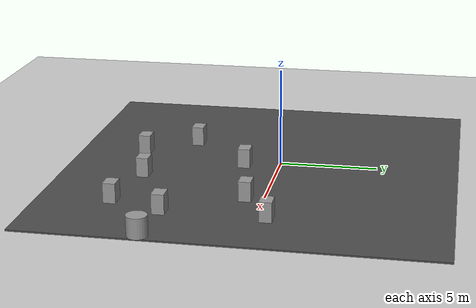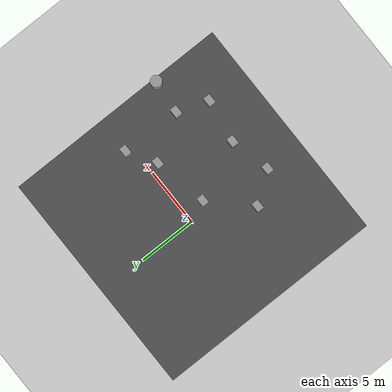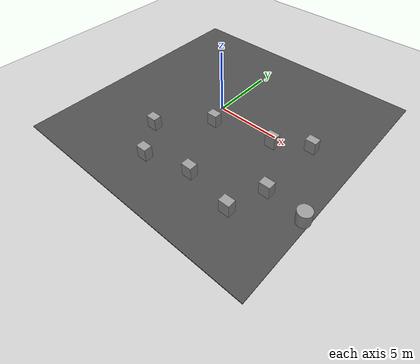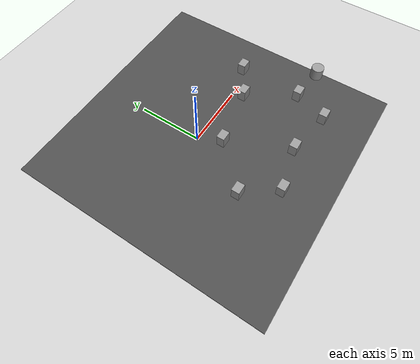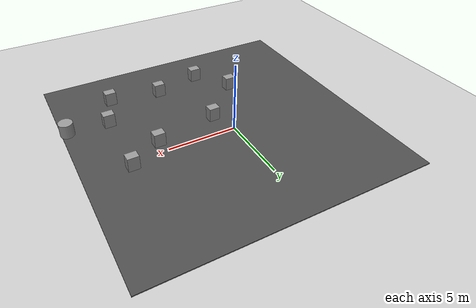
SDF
<sdf version="1.7">
 <world name="default">
  <light name="sun" type="directional">
   <pose>0 0 10 0 -0 0</pose>
   <diffuse>0.8 0.8 0.8 1</diffuse>
   <specular>0.2 0.2 0.2 1</specular>
   <attenuation>
    <range>1000</range>
    <constant>0.9</constant>
    <linear>0.01</linear>
    <quadratic>0.001</quadratic>
   </attenuation>
   <direction>-0.5 0.1 -0.9</direction>
   <spot><inner_angle>0</inner_angle><outer_angle>0</outer_angle><falloff>0</falloff></spot>
  </light>
  <model name="ground_plane">
   <static>1</static>
   <link name="link">
    <collision name="collision">
     <geometry><plane><normal>0 0 1</normal><size>100 100</size></plane></geometry>
     <surface>
      <contact><collide_bitmask>65535</collide_bitmask></contact>
      <friction><ode><mu>100</mu><mu2>50</mu2></ode></friction>
     </surface>
    </collision>
    <visual name="visual">
     <cast_shadows>0</cast_shadows>
     <geometry><plane><normal>0 0 1</normal><size>100 100</size></plane></geometry>
     <material>
      <script><uri>file://media/materials/scripts/gazebo.material</uri><name>Gazebo/Grey</name></script>
     </material>
    </visual>
   </link>
  </model>
  <gravity>0 0 -9.8</gravity>
  <magnetic_field>6e-06 2.3e-05 -4.2e-05</magnetic_field>
  <atmosphere type="adiabatic"/>
  <physics type="ode">
   <max_step_size>0.001</max_step_size>
   <real_time_factor>1</real_time_factor>
   <real_time_update_rate>1000</real_time_update_rate>
  </physics>
  <scene><ambient>0.4 0.4 0.4 1</ambient><background>0.7 0.7 0.7 1</background><shadows>1</shadows></scene>
  <spherical_coordinates>
   <surface_model>EARTH_WGS84</surface_model>
   <latitude_deg>0</latitude_deg>
   <longitude_deg>0</longitude_deg>
   <elevation>0</elevation>
   <heading_deg>0</heading_deg>
  </spherical_coordinates>
  <light name="user_directional_light_0" type="directional">
   <pose>12.5924 29.0347 1 0 -0 0</pose>
   <diffuse>0.5 0.5 0.5 1</diffuse>
   <specular>0.1 0.1 0.1 1</specular>
   <direction>0.1 0.1 -0.9</direction>
   <attenuation>
    <range>20</range>
    <constant>0.5</constant>
    <linear>0.01</linear>
    <quadratic>0.001</quadratic>
   </attenuation>
   <spot><inner_angle>0</inner_angle><outer_angle>0</outer_angle><falloff>0</falloff></spot>
  </light>
  <light name="user_directional_light_1" type="directional">
   <pose>11.9865 -27.8356 1 0 -0 0</pose>
   <diffuse>0.5 0.5 0.5 1</diffuse>
   <specular>0.1 0.1 0.1 1</specular>
   <direction>0.1 0.1 -0.9</direction>
   <attenuation>
    <range>20</range>
    <constant>0.5</constant>
    <linear>0.01</linear>
    <quadratic>0.001</quadratic>
   </attenuation>
   <spot><inner_angle>0</inner_angle><outer_angle>0</outer_angle><falloff>0</falloff></spot>
  </light>
  <light name="user_directional_light_2" type="directional">
   <pose>-11.73 29.4383 1 0 -0 0</pose>
   <diffuse>0.5 0.5 0.5 1</diffuse>
   <specular>0.1 0.1 0.1 1</specular>
   <direction>0.1 0.1 -0.9</direction>
   <attenuation>
    <range>20</range>
    <constant>0.5</constant>
    <linear>0.01</linear>
    <quadratic>0.001</quadratic>
   </attenuation>
   <spot><inner_angle>0</inner_angle><outer_angle>0</outer_angle><falloff>0</falloff></spot>
  </light>
  <light name="user_directional_light_3" type="directional">
   <pose>-12.4873 -27.4824 1 0 -0 0</pose>
   <diffuse>0.5 0.5 0.5 1</diffuse>
   <specular>0.1 0.1 0.1 1</specular>
   <direction>0.1 0.1 -0.9</direction>
   <attenuation>
    <range>20</range>
    <constant>0.5</constant>
    <linear>0.01</linear>
    <quadratic>0.001</quadratic>
   </attenuation>
   <spot><inner_angle>0</inner_angle><outer_angle>0</outer_angle><falloff>0</falloff></spot>
  </light>
  <light name="user_directional_light_4" type="directional">
   <pose>15.1656 0.977923 1 0 -0 0</pose>
   <diffuse>0.5 0.5 0.5 1</diffuse>
   <specular>0.1 0.1 0.1 1</specular>
   <direction>0.1 0.1 -0.9</direction>
   <attenuation>
    <range>20</range>
    <constant>0.5</constant>
    <linear>0.01</linear>
    <quadratic>0.001</quadratic>
   </attenuation>
   <spot><inner_angle>0</inner_angle><outer_angle>0</outer_angle><falloff>0</falloff></spot>
  </light>
  <light name="user_directional_light_5" type="directional">
   <pose>-16.5241 -1.24234 1 0 -0 0</pose>
   <diffuse>0.5 0.5 0.5 1</diffuse>
   <specular>0.1 0.1 0.1 1</specular>
   <direction>0.1 0.1 -0.9</direction>
   <attenuation>
    <range>20</range>
    <constant>0.5</constant>
    <linear>0.01</linear>
    <quadratic>0.001</quadratic>
   </attenuation>
   <spot><inner_angle>0</inner_angle><outer_angle>0</outer_angle><falloff>0</falloff></spot>
  </light>
  <model name="asphalt_plane">
   <static>1</static>
   <link name="link">
    <collision name="collision"><geometry><box><size>20 20 0.1</size></box></geometry></collision>
    <visual name="visual">
     <cast_shadows>0</cast_shadows>
     <geometry><box><size>20 20 0.1</size></box></geometry>
     <material>
      <script>
       <uri>model://asphalt_plane/materials/scripts</uri>
       <uri>model://asphalt_plane/materials/textures</uri>
       <name>vrc/asphalt</name>
      </script>
     </material>
    </visual>
   </link>
   <pose>0.913007 -0.832233 0 0 -0 0</pose>
  </model>
  <model name="unit_box">
   <pose>2.97961 -6.54789 0.549995 3e-06 -9e-06 0.00744</pose>
   <link name="link">
    <inertial>
     <mass>1</mass>
     <inertia>
      <ixx>0.166667</ixx>
      <ixy>0</ixy>
      <ixz>0</ixz>
      <iyy>0.166667</iyy>
      <iyz>0</iyz>
      <izz>0.166667</izz>
     </inertia>
    </inertial>
    <collision name="collision"><geometry><box><size>0.80255 0.619225 1</size></box></geometry></collision>
    <visual name="visual">
     <geometry><box><size>0.80255 0.619225 1</size></box></geometry>
     <material>
      <script><name>Gazebo/Grey</name><uri>file://media/materials/scripts/gazebo.material</uri></script>
     </material>
    </visual>
   </link>
  </model>
  <model name="unit_box_clone">
   <pose>6.67007 -7.13696 0.549995 3e-06 -9e-06 0.007423</pose>
   <link name="link">
    <inertial>
     <mass>1</mass>
     <inertia>
      <ixx>0.166667</ixx>
      <ixy>0</ixy>
      <ixz>0</ixz>
      <iyy>0.166667</iyy>
      <iyz>0</iyz>
      <izz>0.166667</izz>
     </inertia>
    </inertial>
    <collision name="collision"><geometry><box><size>0.80255 0.619226 1</size></box></geometry></collision>
    <visual name="visual">
     <geometry><box><size>0.80255 0.619226 1</size></box></geometry>
     <material>
      <script><name>Gazebo/Grey</name><uri>file://media/materials/scripts/gazebo.material</uri></script>
     </material>
    </visual>
   </link>
  </model>
  <model name="unit_box_clone_0">
   <pose>-0.447452 -7.37695 0.55 0 0 -0.000403</pose>
   <link name="link">
    <inertial>
     <mass>1</mass>
     <inertia>
      <ixx>0.166667</ixx>
      <ixy>0</ixy>
      <ixz>0</ixz>
      <iyy>0.166667</iyy>
      <iyz>0</iyz>
      <izz>0.166667</izz>
     </inertia>
    </inertial>
    <collision name="collision"><geometry><box><size>0.80255 0.619226 1</size></box></geometry></collision>
    <visual name="visual">
     <geometry><box><size>0.80255 0.619226 1</size></box></geometry>
     <material>
      <script><name>Gazebo/Grey</name><uri>file://media/materials/scripts/gazebo.material</uri></script>
     </material>
    </visual>
   </link>
  </model>
  <model name="unit_box_clone_1">
   <pose>-2.28894 -4.89623 0.549995 3e-06 -9e-06 0.007407</pose>
   <link name="link">
    <inertial>
     <mass>1</mass>
     <inertia>
      <ixx>0.166667</ixx>
      <ixy>0</ixy>
      <ixz>0</ixz>
      <iyy>0.166667</iyy>
      <iyz>0</iyz>
      <izz>0.166667</izz>
     </inertia>
    </inertial>
    <collision name="collision"><geometry><box><size>0.80255 0.619226 1</size></box></geometry></collision>
    <visual name="visual">
     <geometry><box><size>0.80255 0.619226 1</size></box></geometry>
     <material>
      <script><name>Gazebo/Grey</name><uri>file://media/materials/scripts/gazebo.material</uri></script>
     </material>
    </visual>
   </link>
  </model>
  <model name="unit_box_clone_2">
   <pose>5.35014 -0.836206 0.549995 3e-06 -9e-06 0.007505</pose>
   <link name="link">
    <inertial>
     <mass>1</mass>
     <inertia>
      <ixx>0.166667</ixx>
      <ixy>0</ixy>
      <ixz>0</ixz>
      <iyy>0.166667</iyy>
      <iyz>0</iyz>
      <izz>0.166667</izz>
     </inertia>
    </inertial>
    <collision name="collision"><geometry><box><size>0.80255 0.619226 1</size></box></geometry></collision>
    <visual name="visual">
     <geometry><box><size>0.80255 0.619226 1</size></box></geometry>
     <material>
      <script><name>Gazebo/Grey</name><uri>file://media/materials/scripts/gazebo.material</uri></script>
     </material>
    </visual>
   </link>
  </model>
  <model name="unit_box_clone_3">
   <pose>7.62213 -4.50352 0.549995 3e-06 -9e-06 0.007603</pose>
   <link name="link">
    <inertial>
     <mass>1</mass>
     <inertia>
      <ixx>0.166667</ixx>
      <ixy>0</ixy>
      <ixz>0</ixz>
      <iyy>0.166667</iyy>
      <iyz>0</iyz>
      <izz>0.166667</izz>
     </inertia>
    </inertial>
    <collision name="collision"><geometry><box><size>0.80255 0.619226 1</size></box></geometry></collision>
    <visual name="visual">
     <geometry><box><size>0.80255 0.619226 1</size></box></geometry>
     <material>
      <script><name>Gazebo/Grey</name><uri>file://media/materials/scripts/gazebo.material</uri></script>
     </material>
    </visual>
   </link>
  </model>
  <model name="unit_cylinder">
   <pose>10.5026 -4.76894 0.55 0 -0 1.5e-05</pose>
   <link name="link">
    <inertial>
     <mass>1</mass>
     <inertia><ixx>0.145833</ixx><ixy>0</ixy><ixz>0</ixz><iyy>0.145833</iyy><iyz>0</iyz><izz>0.125</izz></inertia>
    </inertial>
    <collision name="collision">
     <geometry><cylinder><radius>0.5</radius><length>1</length></cylinder></geometry>
    </collision>
    <visual name="visual">
     <geometry><cylinder><radius>0.5</radius><length>1</length></cylinder></geometry>
     <material>
      <script><name>Gazebo/Grey</name><uri>file://media/materials/scripts/gazebo.material</uri></script>
     </material>
    </visual>
   </link>
  </model>
  <model name="unit_box_clone_4">
   <pose>7.69703 0.582695 0.549995 3e-06 -9e-06 0.007436</pose>
   <link name="link">
    <inertial>
     <mass>1</mass>
     <inertia>
      <ixx>0.166667</ixx>
      <ixy>0</ixy>
      <ixz>0</ixz>
      <iyy>0.166667</iyy>
      <iyz>0</iyz>
      <izz>0.166667</izz>
     </inertia>
    </inertial>
    <collision name="collision"><geometry><box><size>0.80255 0.619226 1</size></box></geometry></collision>
    <visual name="visual">
     <geometry><box><size>0.80255 0.619226 1</size></box></geometry>
     <material>
      <script><name>Gazebo/Grey</name><uri>file://media/materials/scripts/gazebo.material</uri></script>
     </material>
    </visual>
   </link>
  </model>
  <model name="unit_box_clone_5">
   <pose>0.778462 -1.75953 0.549995 -3e-06 9e-06 0.007527</pose>
   <link name="link">
    <inertial>
     <mass>1</mass>
     <inertia>
      <ixx>0.166667</ixx>
      <ixy>0</ixy>
      <ixz>0</ixz>
      <iyy>0.166667</iyy>
      <iyz>0</iyz>
      <izz>0.166667</izz>
     </inertia>
    </inertial>
    <collision name="collision"><geometry><box><size>0.80255 0.619226 1</size></box></geometry></collision>
    <visual name="visual">
     <geometry><box><size>0.80255 0.619226 1</size></box></geometry>
     <material>
      <script><name>Gazebo/Grey</name><uri>file://media/materials/scripts/gazebo.material</uri></script>
     </material>
    </visual>
   </link>
  </model>
 </world>
</sdf>
